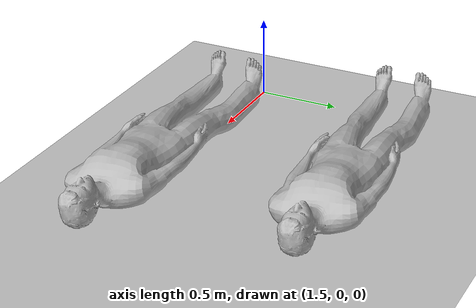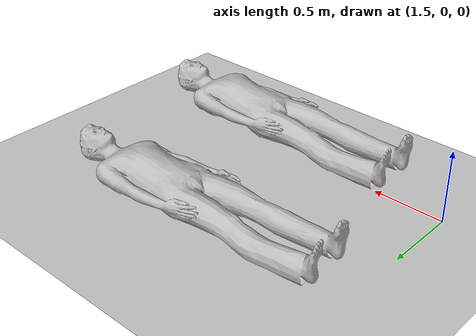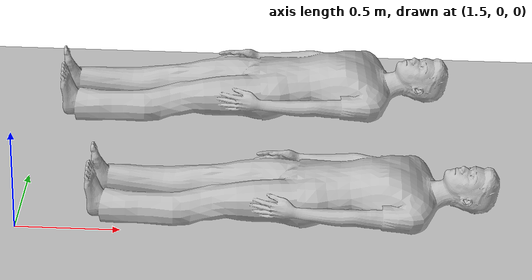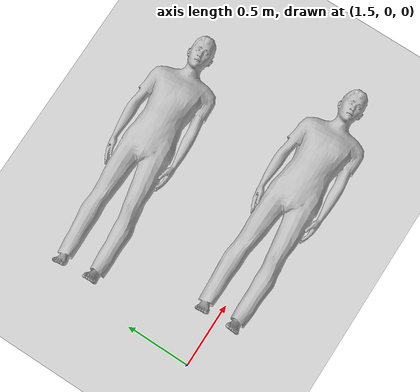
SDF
<?xml version="1.0" ?>
<sdf version="1.7">
  <world name="cbrn_world">
    <plugin
      filename="libgz-sim-physics-system.so"
      name="gz::sim::systems::Physics">
    </plugin>
    <plugin
      filename="libgz-sim-scene-broadcaster-system.so"
      name="gz::sim::systems::SceneBroadcaster">
    </plugin>

    <plugin
      filename="libgz-sim-user-commands-system.so"
      name="gz::sim::systems::UserCommands">
    </plugin>

    <plugin
      filename="libgz-sim-sensors-system.so"
      name="gz::sim::systems::Sensors">
      <render_engine>ogre2</render_engine>
    </plugin>

    <light type="directional" name="sun">
      <cast_shadows>true</cast_shadows>
      <pose>0 0 10 0 0 0</pose>
      <diffuse>0.8 0.8 0.8 1</diffuse>
      <specular>0.2 0.2 0.2 1</specular>
      <attenuation>
        <range>1000</range>
        <constant>0.9</constant>
        <linear>0.01</linear>
        <quadratic>0.001</quadratic>
      </attenuation>
      <direction>-0.5 0.1 -0.9</direction>
    </light>

    <model name="ground_plane">
      <static>true</static>
      <link name="link">
        <collision name="collision">
          <geometry><plane><normal>0 0 1</normal><size>100 100</size></plane></geometry>
        </collision>
        <visual name="visual">
          <geometry>
            <plane>
              <normal>0 0 1</normal>
              <size>100 100</size>
            </plane>
          </geometry>

          <material>
            <ambient>0.8 0.8 0.8 1</ambient>
            <diffuse>0.8 0.8 0.8 1</diffuse>
            <specular>0.1 0.1 0.1 1</specular>
          </material>

        </visual>
      </link>
    </model>

    <include>
      <name>person1</name>
      <uri>model://person_standing</uri>
      <pose>1.85 0 0.17 -1.57 0 -1.57</pose>
    </include>
    <include>
      <name>person2</name>
      <uri>model://person_standing</uri>
      <!-- x y z roll pitch yaw -->
      <!-- fata stanga sus ... ... ...-->
      <pose>1.6 1 0.17 -1.57 0 -1.51</pose>
    </include>

  </world>
</sdf>

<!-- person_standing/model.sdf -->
<sdf version="1.5">
  <model name="person_standing">

    <link name="person">
      <inertial>
        <pose>0 0 0.9 0 0 0</pose>
        <mass>80.0</mass>
        <inertia>
          <ixx>24.88</ixx>
          <ixy>0</ixy>
          <ixz>0</ixz>
          <iyy>25.73</iyy>
          <iyz>0</iyz>
          <izz>2.48</izz>
        </inertia>
      </inertial>

      <collision name="bottom">
        <pose>0 -0.1 0.01 0 0 0</pose>
        <geometry>
          <box>
            <size>0.5 0.35 0.02</size>
          </box>
        </geometry>
      </collision>

      <collision name="person_simple_collision">
        <pose>0 0 0.9 0 0 0</pose> <geometry>
          <box>
            <size>0.5 0.35 1.8</size>
          </box>
        </geometry>
      </collision>

      <visual name="visual">
        <pose>0 0 0.02 0.04 0 0</pose>
        <geometry>
          <mesh>
            <uri>model://person_standing/meshes/standing.dae</uri>
          </mesh>
        </geometry>
      </visual>
    </link>
  </model>
</sdf>
